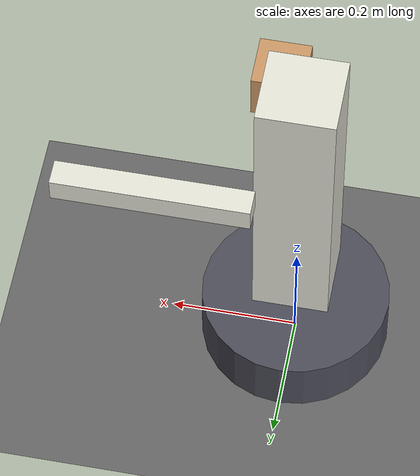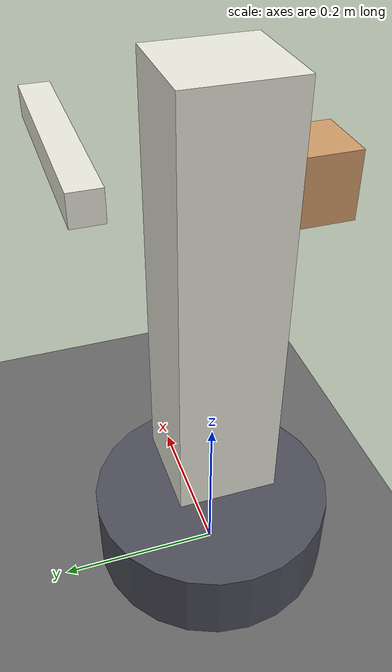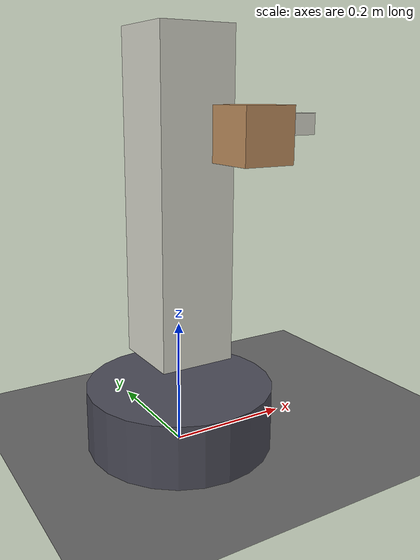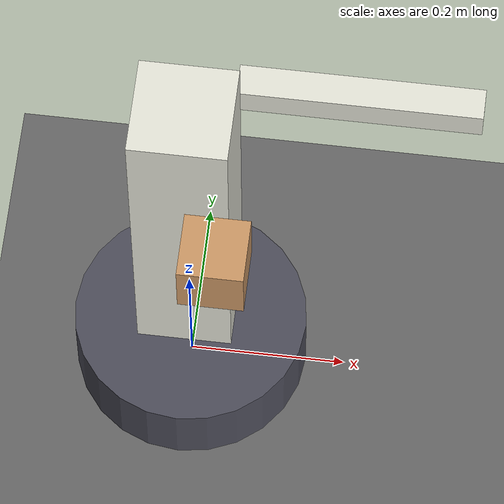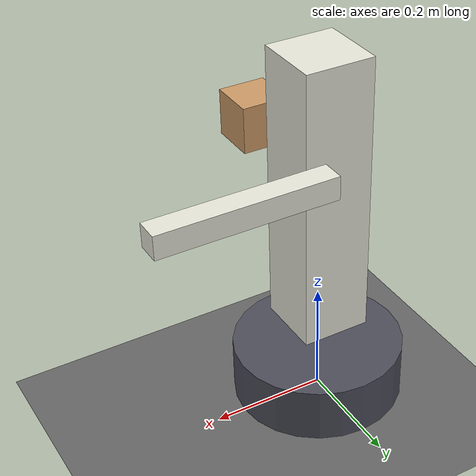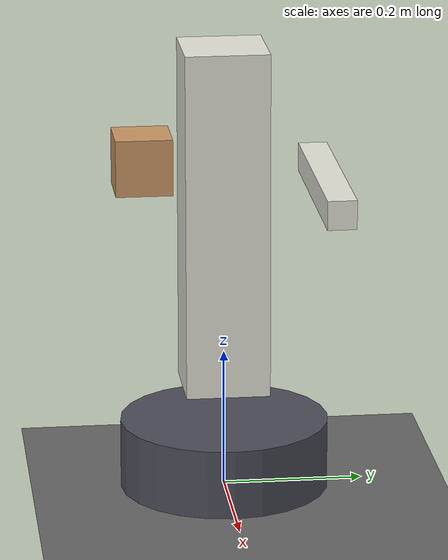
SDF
<?xml version="1.0" ?>
<sdf version="1.10">
  <world name="archer_world">

    <!-- Core systems every Gz world needs -->
    <plugin filename="gz-sim-physics-system"
            name="gz::sim::systems::Physics"/>
    <plugin filename="gz-sim-user-commands-system"
            name="gz::sim::systems::UserCommands"/>
    <plugin filename="gz-sim-scene-broadcaster-system"
            name="gz::sim::systems::SceneBroadcaster"/>

    <light type="directional" name="sun">
      <cast_shadows>true</cast_shadows>
      <pose>0 0 10 0 0 0</pose>
      <diffuse>0.8 0.8 0.8 1</diffuse>
      <specular>0.2 0.2 0.2 1</specular>
      <direction>-0.5 0.1 -0.9</direction>
    </light>

    <!-- Ground plane -->
    <model name="ground_plane">
      <static>true</static>
      <link name="link">
        <collision name="collision">
          <geometry><plane><normal>0 0 1</normal><size>20 20</size></plane></geometry>
        </collision>
        <visual name="visual">
          <geometry><plane><normal>0 0 1</normal><size>20 20</size></plane></geometry>
          <material>
            <ambient>0.3 0.3 0.3 1</ambient>
            <diffuse>0.4 0.4 0.4 1</diffuse>
          </material>
        </visual>
      </link>
    </model>

    <!-- ============================ THE ARCHER ============================ -->
    <model name="archer">
      <pose>0 0 0 0 0 0</pose>

      <!-- Weld the base to the world so the robot doesn't fall over/slide -->
      <joint name="world_fix" type="fixed">
        <parent>world</parent>
        <child>base_link</child>
      </joint>

      <!-- Turntable housing (fixed) -->
      <link name="base_link">
        <pose>0 0 0.05 0 0 0</pose>
        <inertial>
          <mass>5.0</mass>
          <inertia><ixx>0.04</ixx><iyy>0.04</iyy><izz>0.06</izz>
                   <ixy>0</ixy><ixz>0</ixz><iyz>0</iyz></inertia>
        </inertial>
        <collision name="col">
          <geometry><cylinder><radius>0.15</radius><length>0.1</length></cylinder></geometry>
        </collision>
        <visual name="vis">
          <geometry><cylinder><radius>0.15</radius><length>0.1</length></cylinder></geometry>
          <material><ambient>0.2 0.2 0.25 1</ambient><diffuse>0.3 0.3 0.35 1</diffuse></material>
        </visual>
      </link>

      <!-- Body/torso: rides on the turntable, yaws to aim -->
      <link name="body">
        <pose>0 0 0.4 0 0 0</pose>
        <inertial>
          <mass>1.0</mass>
          <inertia><ixx>0.02</ixx><iyy>0.02</iyy><izz>0.004</izz>
                   <ixy>0</ixy><ixz>0</ixz><iyz>0</iyz></inertia>
        </inertial>
        <collision name="col">
          <geometry><box><size>0.12 0.12 0.5</size></box></geometry>
        </collision>
        <visual name="vis">
          <geometry><box><size>0.12 0.12 0.5</size></box></geometry>
          <material><ambient>0.85 0.85 0.8 1</ambient><diffuse>0.9 0.9 0.85 1</diffuse></material>
        </visual>
      </link>

      <joint name="base_joint" type="revolute">
        <parent>base_link</parent>
        <child>body</child>
        <axis>
          <xyz>0 0 1</xyz>
          <limit><lower>-1.57</lower><upper>1.57</upper></limit>
          <dynamics><damping>0.5</damping></dynamics>
        </axis>
      </joint>

      <!-- Bow arm: fixed to the body, just holds steady (no joint motion) -->
      <link name="bow_arm">
        <pose>0.2 0.12 0.5 0 0 0</pose>
        <inertial>
          <mass>0.2</mass>
          <inertia><ixx>0.001</ixx><iyy>0.003</iyy><izz>0.003</izz>
                   <ixy>0</ixy><ixz>0</ixz><iyz>0</iyz></inertia>
        </inertial>
        <collision name="col">
          <geometry><box><size>0.3 0.04 0.04</size></box></geometry>
        </collision>
        <visual name="vis">
          <geometry><box><size>0.3 0.04 0.04</size></box></geometry>
          <material><ambient>0.85 0.85 0.8 1</ambient><diffuse>0.9 0.9 0.85 1</diffuse></material>
        </visual>
      </link>
      <joint name="bow_fix" type="fixed">
        <parent>body</parent>
        <child>bow_arm</child>
      </joint>

      <!-- Draw hand: slides backward/forward = drawing the string -->
      <link name="draw_hand">
        <pose>0.05 -0.12 0.5 0 0 0</pose>
        <inertial>
          <mass>0.2</mass>
          <inertia><ixx>0.0002</ixx><iyy>0.0002</iyy><izz>0.0002</izz>
                   <ixy>0</ixy><ixz>0</ixz><iyz>0</iyz></inertia>
        </inertial>
        <collision name="col">
          <geometry><box><size>0.08 0.08 0.08</size></box></geometry>
        </collision>
        <visual name="vis">
          <geometry><box><size>0.08 0.08 0.08</size></box></geometry>
          <material><ambient>0.7 0.5 0.3 1</ambient><diffuse>0.8 0.6 0.4 1</diffuse></material>
        </visual>
      </link>
      <joint name="draw_joint" type="prismatic">
        <parent>body</parent>
        <child>draw_hand</child>
        <axis>
          <xyz>1 0 0</xyz>
          <limit><lower>-0.2</lower><upper>0.0</upper></limit>
          <dynamics><damping>5.0</damping></dynamics>
        </axis>
      </joint>

      <!-- Position controllers: each listens on a Gz topic for a target value -->
      <plugin filename="gz-sim-joint-position-controller-system"
              name="gz::sim::systems::JointPositionController">
        <joint_name>base_joint</joint_name>
        <topic>/archer/base_cmd</topic>
        <p_gain>30</p_gain>
        <i_gain>0.1</i_gain>
        <d_gain>3</d_gain>
      </plugin>
      <plugin filename="gz-sim-joint-position-controller-system"
              name="gz::sim::systems::JointPositionController">
        <joint_name>draw_joint</joint_name>
        <topic>/archer/draw_cmd</topic>
        <p_gain>80</p_gain>
        <i_gain>0.1</i_gain>
        <d_gain>8</d_gain>
      </plugin>

    </model>

  </world>
</sdf>
